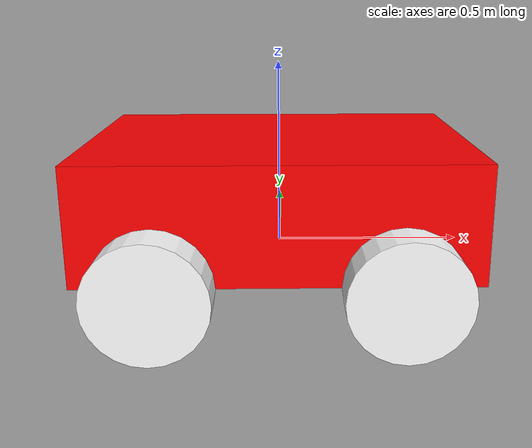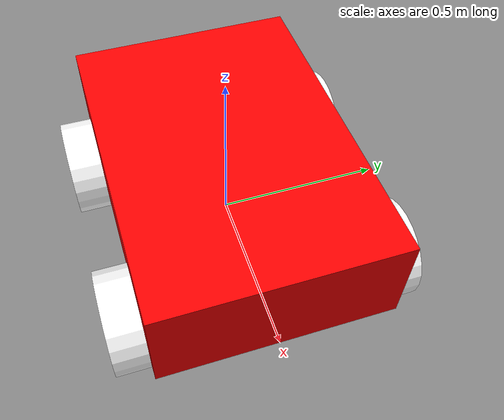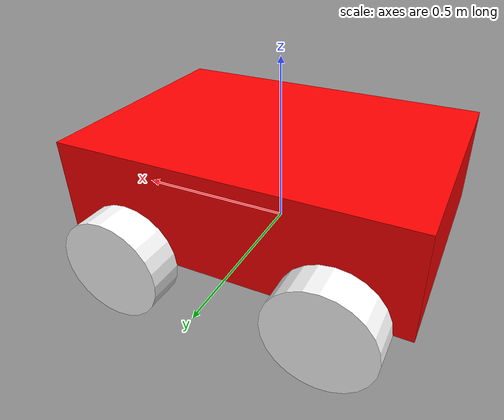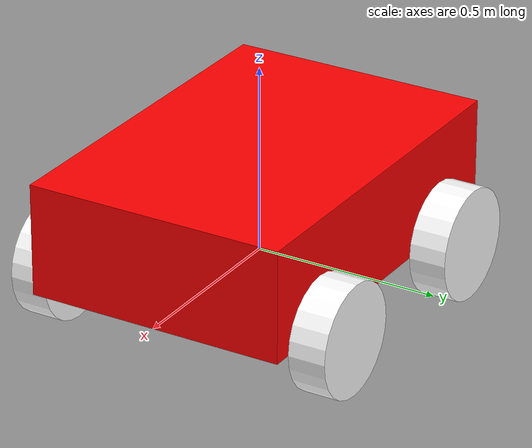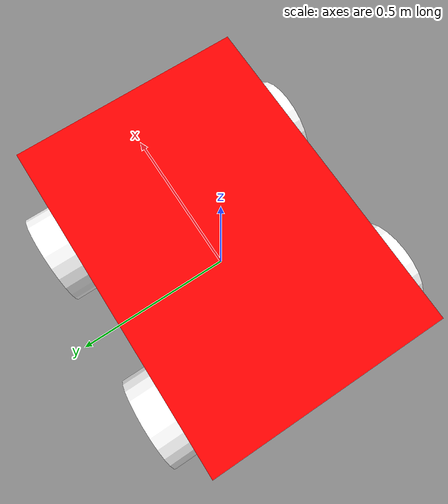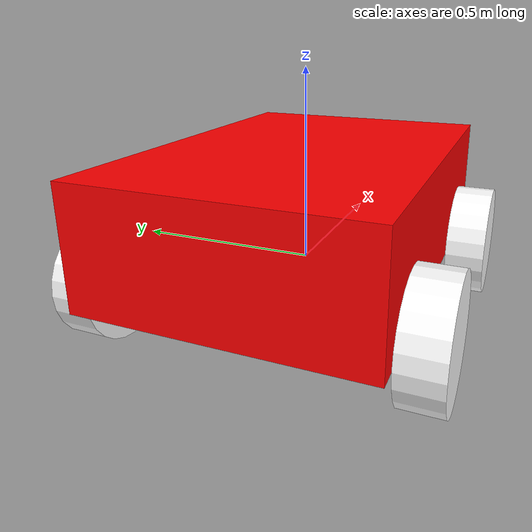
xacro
<?xml version="1.0"?>
<robot xmlns:xacro="http://www.ros.org/wiki/xacro"  name="robot">

    <xacro:include filename="robot_core.xacro" />
    <xacro:include filename="gazebo_control.xacro" />

</robot>

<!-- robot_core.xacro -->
<robot xmlns:xacro="http://www.ros.org/wiki/xacro">

    <xacro:include filename="colours.xacro" />
    <xacro:include filename="inertial_macros.xacro" />

    <!-- BASE LINK -->
    <link name="base_link">
    </link>

    <!-- CHASSIS -->
    <joint name = "chassis_joint" type= "fixed">
        <parent link = "base_link"/>
        <child link = "chassis_link"/>
        <origin xyz = "0 0 0"/>
    </joint>

    <link name = "chassis_link">
        <visual>
            <origin xyz = "0 0 0.15"/>
            <geometry>
                <box size = "1 0.7 0.3"/>
            </geometry>
            <material name ="red"/>
        </visual>
        <collision>
            <origin xyz = "0 0 0.15"/>
            <geometry>
                <box size = "1 0.7 0.3"/>
            </geometry>
        </collision>
        <xacro:inertial_box mass="1" x="1" y="0.7" z="0.3">
            <origin xyz="0 0 0.15" rpy="0 0 0"/>
        </xacro:inertial_box>
    </link>

    <gazebo reference = "chassis_link">
        <material> Gazebo/Red </material>
    </gazebo>

    <!-- LEFT FRONT WHEEL-->
    <joint name = "lf_wheel_joint" type= "continuous">
        <parent link = "chassis_link"/>
        <child link = "lf_wheel_link"/>
        <origin xyz = "0.3 0.4 0" rpy="-${pi/2} 0 0"/>
        <axis xyz = "0 0 1"/>
    </joint>

    <link name = "lf_wheel_link">
        <visual>
            <geometry>
                <cylinder radius = "0.15" length="0.1"/>
            </geometry>
            <material name ="white"/>
        </visual>
        <collision>
            <geometry>
                <cylinder radius = "0.15" length="0.1"/>
            </geometry>
        </collision>
        <xacro:inertial_cylinder mass="0.1" length="0.1" radius="0.15">
            <origin xyz="0 0 0" rpy="0 0 0"/>
        </xacro:inertial_cylinder>
    </link>

    <gazebo reference = "lf_wheel_link">
        <material> Gazebo/White </material>
    </gazebo>

    <!-- RIGHT FRONT WHEEL-->
    <joint name = "rf_wheel_joint" type= "continuous">
        <parent link = "chassis_link"/>
        <child link = "rf_wheel_link"/>
        <origin xyz = "0.3 -0.4 0" rpy="${pi/2} 0 0"/>
        <axis xyz = "0 0 -1"/>
    </joint>

    <link name = "rf_wheel_link">
        <visual>
            <geometry>
                <cylinder radius = "0.15" length="0.1"/>
            </geometry>
            <material name ="white"/>
        </visual>
        <collision>
            <geometry>
                <cylinder radius = "0.15" length="0.1"/>
            </geometry>
        </collision>
        <xacro:inertial_cylinder mass="0.1" length="0.1" radius="0.15">
            <origin xyz="0 0 0" rpy="0 0 0"/>
        </xacro:inertial_cylinder>
    </link>

    <gazebo reference = "rf_wheel_link">
        <material> Gazebo/White </material>
    </gazebo>

    <!-- LEFT BACK WHEEL-->
    <joint name = "lb_wheel_joint" type= "continuous">
        <parent link = "chassis_link"/>
        <child link = "lb_wheel_link"/>
        <origin xyz = "-0.3 0.4 0" rpy="-${pi/2} 0 0"/>
        <axis xyz = "0 0 1"/>
    </joint>

    <link name = "lb_wheel_link">
        <visual>
            <geometry>
                <cylinder radius = "0.15" length="0.1"/>
            </geometry>
            <material name ="white"/>
        </visual>
        <collision>
            <geometry>
                <cylinder radius = "0.15" length="0.1"/>
            </geometry>
        </collision>
        <xacro:inertial_cylinder mass="0.1" length="0.1" radius="0.15">
            <origin xyz="0 0 0" rpy="0 0 0"/>
        </xacro:inertial_cylinder>
    </link>

    <gazebo reference = "lb_wheel_link">
        <material> Gazebo/White </material>
    </gazebo>

    <!-- RIGHT BACK WHEEL-->
    <joint name = "rb_wheel_joint" type= "continuous">
        <parent link = "chassis_link"/>
        <child link = "rb_wheel_link"/>
        <origin xyz = "-0.3 -0.4 0" rpy="${pi/2} 0 0"/>
        <axis xyz = "0 0 -1"/>
    </joint>

    <link name = "rb_wheel_link">
        <visual>
            <geometry>
                <cylinder radius = "0.15" length="0.1"/>
            </geometry>
            <material name ="white"/>
        </visual>
        <collision>
            <geometry>
                <cylinder radius = "0.15" length="0.1"/>
            </geometry>
        </collision>
        <xacro:inertial_cylinder mass="0.1" length="0.1" radius="0.15">
            <origin xyz="0 0 0" rpy="0 0 0"/>
        </xacro:inertial_cylinder>
    </link>

    <gazebo reference = "rb_wheel_link">
        <material> Gazebo/White </material>
    </gazebo>

</robot>

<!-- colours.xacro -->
<robot xmlns:xacro="http://www.ros.org/wiki/xacro" >

    <material name= "white">
        <color rgba="1 1 1 1" />
    </material>

    <material name= "black">
        <color rgba="0 0 0 1" />
    </material>

    <material name= "red">
        <color rgba="1 0 0 1" />
    </material>

    <material name= "blue">
        <color rgba="0 0 1 1" />
    </material>

    <material name= "green">
        <color rgba="0 1 0 1" />
    </material>

</robot>
